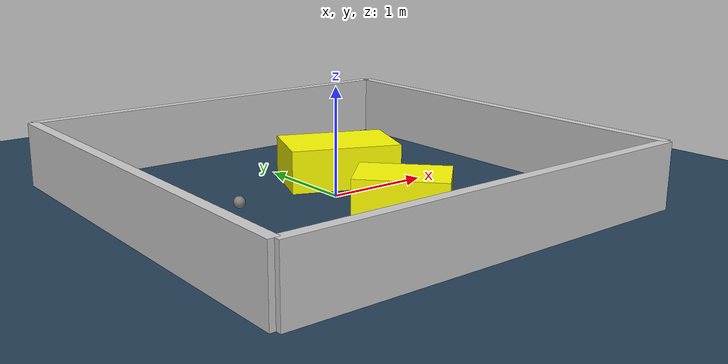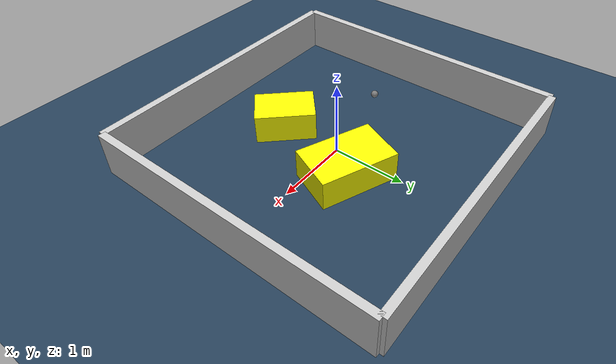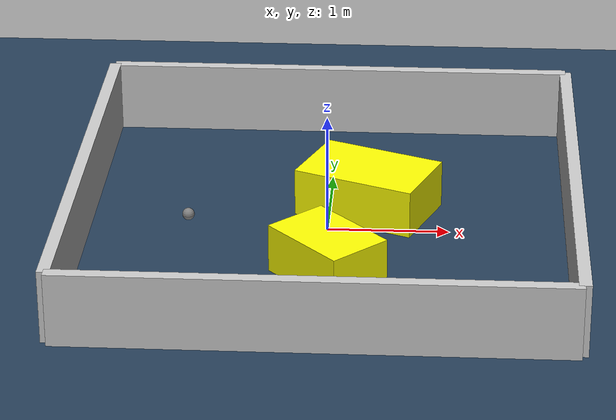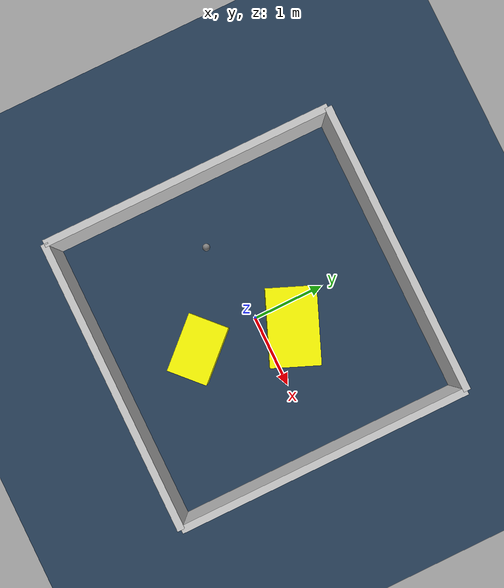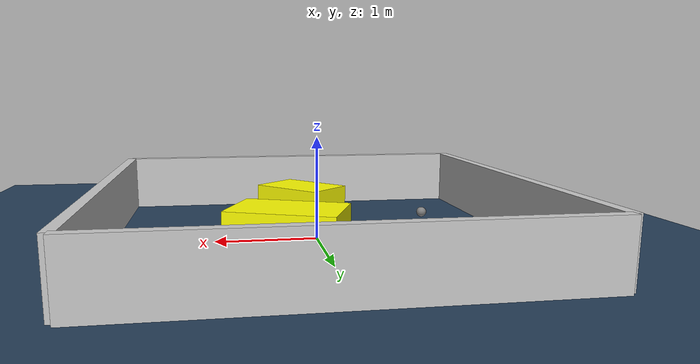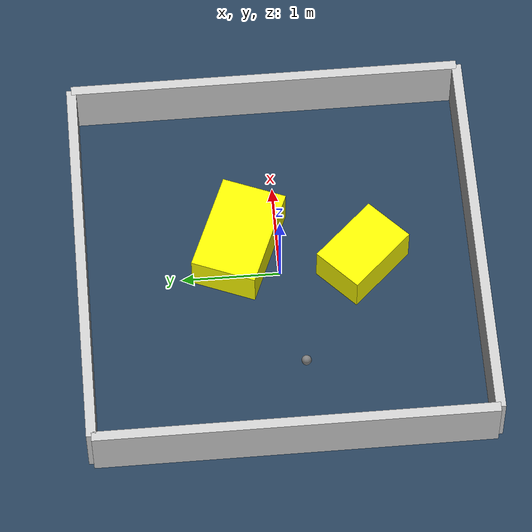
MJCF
<?xml version="1.0" ?>
<mujoco model="generated_environment">
  <option timestep="0.01" integrator="RK4" cone="elliptic"/>
  <default>
    <geom density="1"/>
  </default>
  <asset>
    <texture builtin="gradient" height="3072" rgb1="0.3 0.5 0.7" rgb2="0 0 0" type="skybox" width="512"/>
    <texture builtin="checker" height="300" mark="edge" markrgb="0.8 0.8 0.8" name="groundplane" rgb1="0.2 0.3 0.4" rgb2="0.1 0.2 0.3" type="2d" width="300"/>
    <material name="groundplane" reflectance="0.2" texrepeat="5 5" texture="groundplane" texuniform="true"/>
    <material name="robot" rgba="0.0 1.0 0.0 1"/>
  </asset>
  <worldbody>
    <light dir="0 0 -1" directional="true" pos="0 0 1.5"/>
    <geom condim="4" friction="1.0 0.005 0.001" material="groundplane" name="floor" size="0 0 0.05" type="plane"/>
    <body name="walls">
      <geom name="wall_1" condim="4" pos="-2.0 0.0 0.3" rgba="0.800000011920929 0.800000011920929 0.800000011920929 1.0" size="0.05 2.0 0.3" type="box"/>
      <geom name="wall_2" condim="4" pos="2.0 0.0 0.3" rgba="0.800000011920929 0.800000011920929 0.800000011920929 1.0" size="0.05 2.0 0.3" type="box"/>
      <geom name="wall_3" condim="4" pos="0.0 -2.0 0.3" rgba="0.800000011920929 0.800000011920929 0.800000011920929 1.0" size="2.0 0.05 0.3" type="box"/>
      <geom name="wall_4" condim="4" pos="0.0 2.0 0.3" rgba="0.800000011920929 0.800000011920929 0.800000011920929 1.0" size="2.0 0.05 0.3" type="box"/>
    </body>
    <body name="robot">
      <joint name="joint_x" type="slide" pos="0 0 0" axis="1 0 0"/>
      <joint name="joint_y" type="slide" pos="0 0 0" axis="0 1 0"/>
      <geom name="robot" type="sphere" pos="-1.123465052158561 -0.1756693492685948 0.2" size="0.05" mass="5." friction="1.0 0.005 0.0001" condim="4"/>
      <site name="sensor_ball"/>
    </body>
    <body name="obstacle_1_movable">
      <geom name="obstacle_1_movable" condim="4" pos="0.04553155312865842 -0.8480770055009906 0.2" euler="0 0 223.36615302810827" friction="1.0 0.005 0.001" rgba="1 1 0 1" size="0.27343428883581206 0.3998890395790248 0.2" type="box" mass="0.1"/>
      <joint type="free"/>
    </body>
    <body name="obstacle_2_movable">
      <geom name="obstacle_2_movable" condim="4" pos="0.3231840895820064 0.3907091088502921 0.2" euler="0 0 337.7625527977518" friction="1.0 0.005 0.001" rgba="1 1 0 1" size="0.5195821197939081 0.33609238601000246 0.2" type="box" mass="0.1"/>
      <joint type="free"/>
    </body>
  </worldbody>
  <actuator>
    <motor name="actuator_x" joint="joint_x" gear="1" ctrlrange="-1 1"/>
    <motor name="actuator_y" joint="joint_y" gear="1" ctrlrange="-1 1"/>
  </actuator>
</mujoco>
